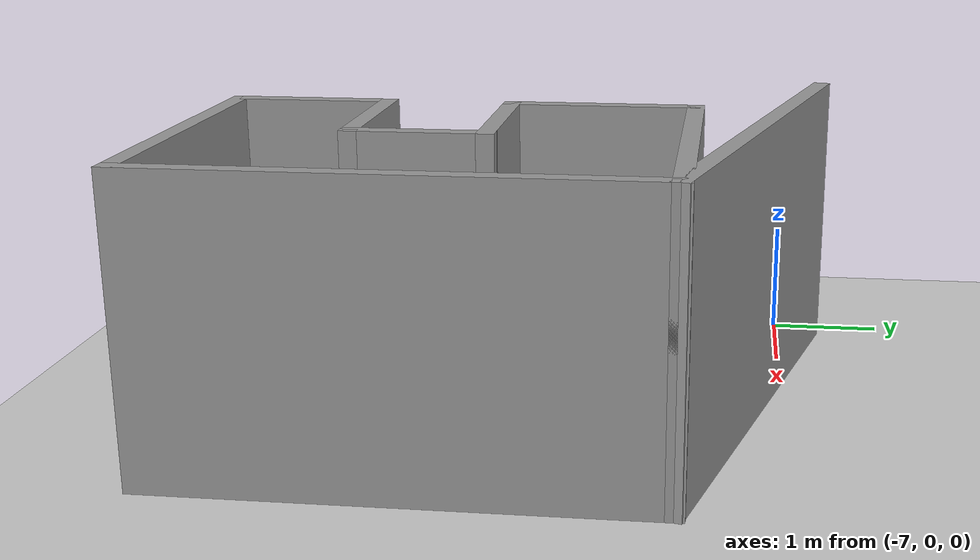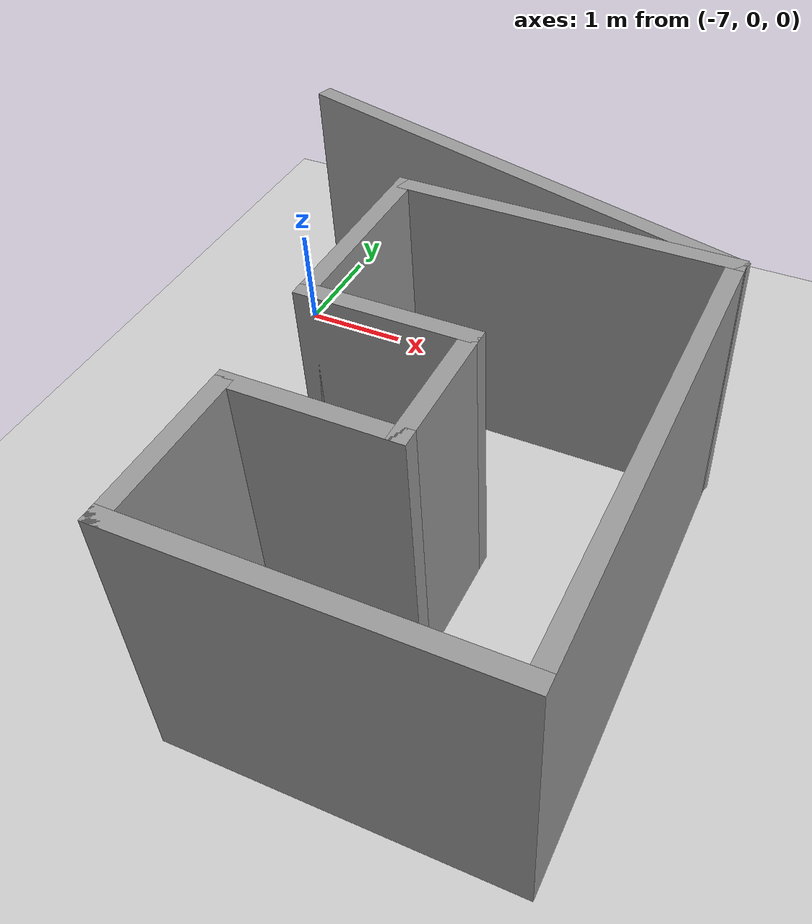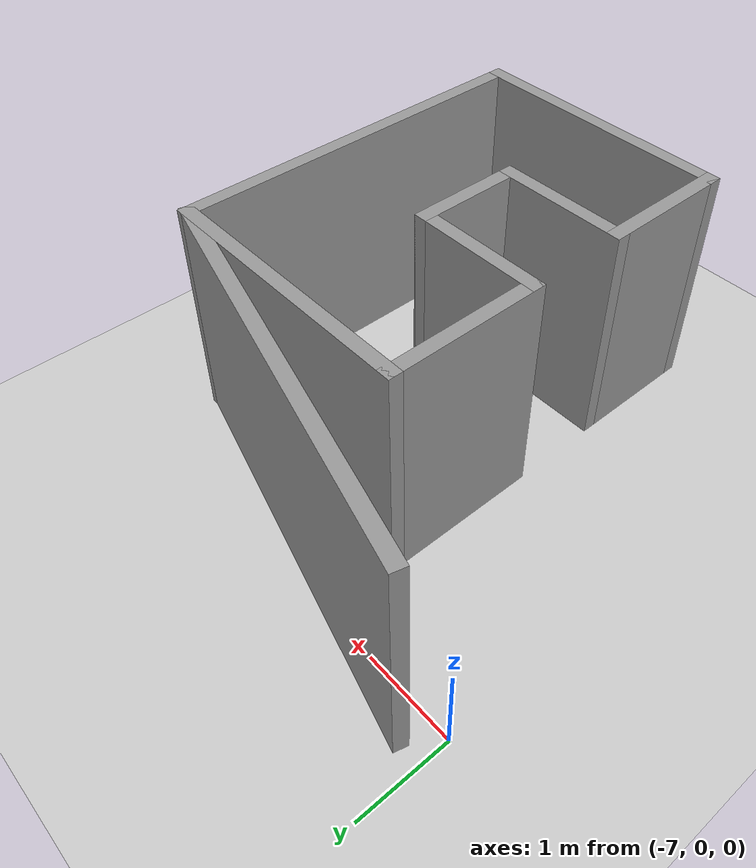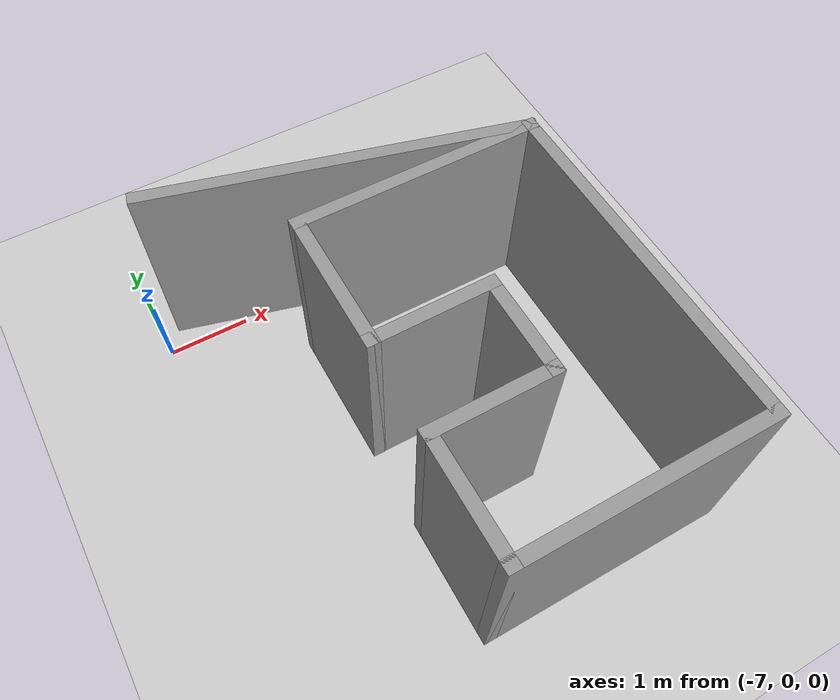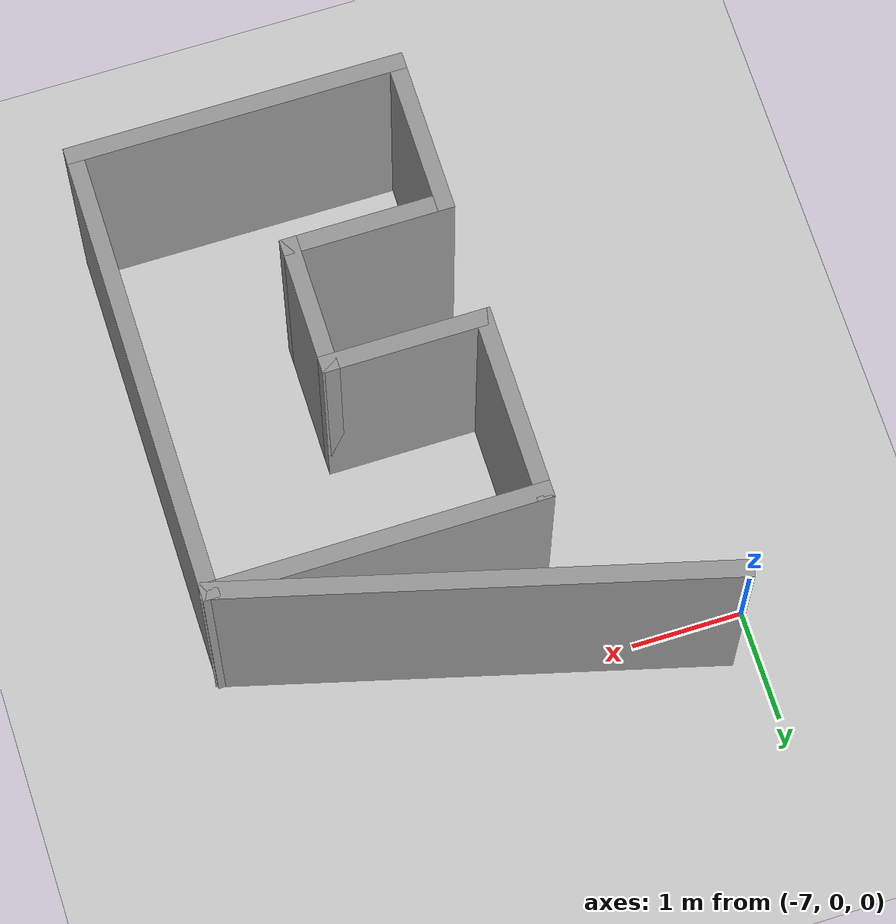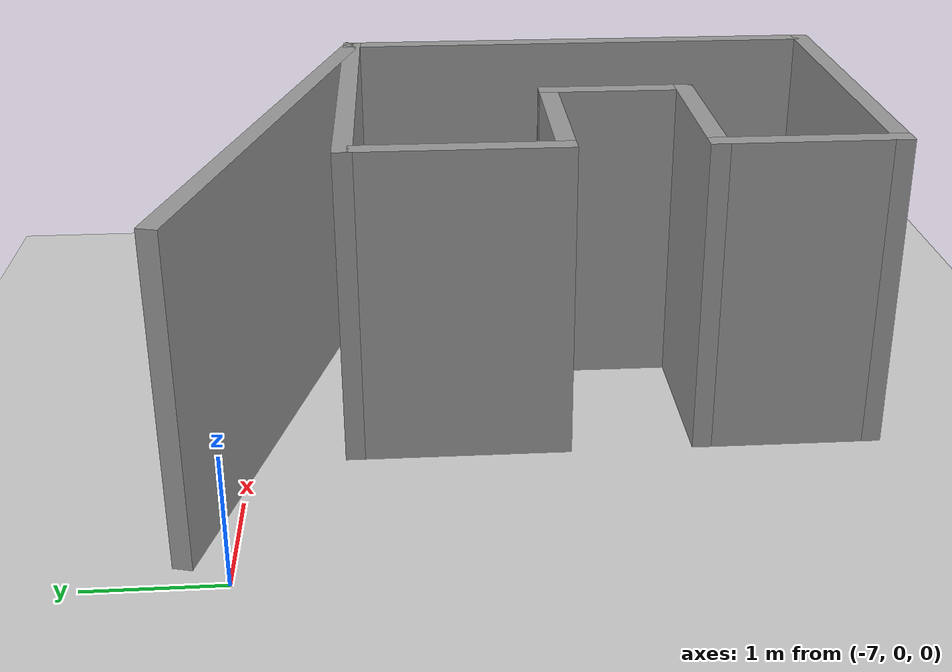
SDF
<sdf version="1.7">
 <world name="default">
  <light name="sun" type="directional">
   <pose>0 0 10 0 -0 0</pose>
   <diffuse>0.8 0.8 0.8 1</diffuse>
   <specular>0.2 0.2 0.2 1</specular>
   <attenuation>
    <range>1000</range>
    <constant>0.9</constant>
    <linear>0.01</linear>
    <quadratic>0.001</quadratic>
   </attenuation>
   <direction>-0.5 0.1 -0.9</direction>
   <spot><inner_angle>0</inner_angle><outer_angle>0</outer_angle><falloff>0</falloff></spot>
  </light>
  <model name="ground_plane">
   <static>1</static>
   <link name="link">
    <collision name="collision">
     <geometry><plane><normal>0 0 1</normal><size>100 100</size></plane></geometry>
     <surface>
      <contact><collide_bitmask>65535</collide_bitmask></contact>
      <friction><ode><mu>100</mu><mu2>50</mu2></ode></friction>
     </surface>
    </collision>
    <visual name="visual">
     <cast_shadows>0</cast_shadows>
     <geometry><plane><normal>0 0 1</normal><size>100 100</size></plane></geometry>
     <material>
      <script><uri>file://media/materials/scripts/gazebo.material</uri><name>Gazebo/Grey</name></script>
     </material>
    </visual>
   </link>
  </model>
  <gravity>0 0 -9.8</gravity>
  <magnetic_field>6e-06 2.3e-05 -4.2e-05</magnetic_field>
  <atmosphere type="adiabatic"/>
  <physics type="ode">
   <max_step_size>0.001</max_step_size>
   <real_time_factor>1</real_time_factor>
   <real_time_update_rate>1000</real_time_update_rate>
  </physics>
  <scene><ambient>0.4 0.4 0.4 1</ambient><background>0.7 0.7 0.7 1</background><shadows>1</shadows></scene>
  <spherical_coordinates>
   <surface_model>EARTH_WGS84</surface_model>
   <latitude_deg>0</latitude_deg>
   <longitude_deg>0</longitude_deg>
   <elevation>0</elevation>
   <heading_deg>0</heading_deg>
  </spherical_coordinates>
  <model name="demo">
   <pose>-3.40682 -2.25364 0 0 -0 0</pose>
   <link name="Wall_0">
    <collision name="Wall_0_Collision">
     <geometry><box><size>3 0.15 2.5</size></box></geometry>
     <pose>0 0 1.25 0 -0 0</pose>
    </collision>
    <visual name="Wall_0_Visual">
     <pose>0 0 1.25 0 -0 0</pose>
     <geometry><box><size>3 0.15 2.5</size></box></geometry>
     <material>
      <script><uri>file://media/materials/scripts/gazebo.material</uri><name>Gazebo/Grey</name></script>
      <ambient>1 1 1 1</ambient>
     </material>
     <meta><layer>0</layer></meta>
    </visual>
    <pose>-0.538183 1.45364 0 0 -0 3.14159</pose>
   </link>
   <link name="Wall_1">
    <collision name="Wall_1_Collision">
     <geometry><box><size>1.75 0.15 2.5</size></box></geometry>
     <pose>0 0 1.25 0 -0 0</pose>
    </collision>
    <visual name="Wall_1_Visual">
     <pose>0 0 1.25 0 -0 0</pose>
     <geometry><box><size>1.75 0.15 2.5</size></box></geometry>
     <material>
      <script><uri>file://media/materials/scripts/gazebo.material</uri><name>Gazebo/Grey</name></script>
      <ambient>1 1 1 1</ambient>
     </material>
     <meta><layer>0</layer></meta>
    </visual>
    <pose>-1.96318 0.653641 0 0 -0 -1.5708</pose>
   </link>
   <link name="Wall_2">
    <collision name="Wall_2_Collision">
     <geometry><box><size>1.5 0.15 2.5</size></box></geometry>
     <pose>0 0 1.25 0 -0 0</pose>
    </collision>
    <visual name="Wall_2_Visual">
     <pose>0 0 1.25 0 -0 0</pose>
     <geometry><box><size>1.5 0.15 2.5</size></box></geometry>
     <material>
      <script><uri>file://media/materials/scripts/gazebo.material</uri><name>Gazebo/Grey</name></script>
      <ambient>1 1 1 1</ambient>
     </material>
     <meta><layer>0</layer></meta>
    </visual>
    <pose>-1.28818 -0.146359 0 0 -0 0</pose>
   </link>
   <link name="Wall_3">
    <collision name="Wall_3_Collision">
     <geometry><box><size>1.25 0.15 2.5</size></box></geometry>
     <pose>0 0 1.25 0 -0 0</pose>
    </collision>
    <visual name="Wall_3_Visual">
     <pose>0 0 1.25 0 -0 0</pose>
     <geometry><box><size>1.25 0.15 2.5</size></box></geometry>
     <material>
      <script><uri>file://media/materials/scripts/gazebo.material</uri><name>Gazebo/Grey</name></script>
      <ambient>1 1 1 1</ambient>
     </material>
     <meta><layer>0</layer></meta>
    </visual>
    <pose>-0.613183 -0.696359 0 0 -0 -1.5708</pose>
   </link>
   <link name="Wall_4">
    <collision name="Wall_4_Collision">
     <geometry><box><size>1.5 0.15 2.5</size></box></geometry>
     <pose>0 0 1.25 0 -0 0</pose>
    </collision>
    <visual name="Wall_4_Visual">
     <pose>0 0 1.25 0 -0 0</pose>
     <geometry><box><size>1.5 0.15 2.5</size></box></geometry>
     <material>
      <script><uri>file://media/materials/scripts/gazebo.material</uri><name>Gazebo/Grey</name></script>
      <ambient>1 1 1 1</ambient>
     </material>
     <meta><layer>0</layer></meta>
    </visual>
    <pose>-1.28818 -1.24636 0 0 -0 3.14159</pose>
   </link>
   <link name="Wall_5">
    <collision name="Wall_5_Collision">
     <geometry><box><size>1.5 0.15 2.5</size></box></geometry>
     <pose>0 0 1.25 0 -0 0</pose>
    </collision>
    <visual name="Wall_5_Visual">
     <pose>0 0 1.25 0 -0 0</pose>
     <geometry><box><size>1.5 0.15 2.5</size></box></geometry>
     <material>
      <script><uri>file://media/materials/scripts/gazebo.material</uri><name>Gazebo/Grey</name></script>
      <ambient>1 1 1 1</ambient>
     </material>
     <meta><layer>0</layer></meta>
    </visual>
    <pose>-1.96318 -1.92136 0 0 -0 -1.5708</pose>
   </link>
   <link name="Wall_6">
    <collision name="Wall_6_Collision">
     <geometry><box><size>3 0.15 2.5</size></box></geometry>
     <pose>0 0 1.25 0 -0 0</pose>
    </collision>
    <visual name="Wall_6_Visual">
     <pose>0 0 1.25 0 -0 0</pose>
     <geometry><box><size>3 0.15 2.5</size></box></geometry>
     <material>
      <script><uri>file://media/materials/scripts/gazebo.material</uri><name>Gazebo/Grey</name></script>
      <ambient>1 1 1 1</ambient>
     </material>
     <meta><layer>0</layer></meta>
    </visual>
    <pose>-0.538183 -2.59636 0 0 -0 0</pose>
   </link>
   <link name="Wall_7">
    <collision name="Wall_7_Collision">
     <geometry><box><size>4.2 0.15 2.5</size></box></geometry>
     <pose>0 0 1.25 0 -0 0</pose>
    </collision>
    <visual name="Wall_7_Visual">
     <pose>0 0 1.25 0 -0 0</pose>
     <geometry><box><size>4.2 0.15 2.5</size></box></geometry>
     <material>
      <script><uri>file://media/materials/scripts/gazebo.material</uri><name>Gazebo/Grey</name></script>
      <ambient>1 1 1 1</ambient>
     </material>
     <meta><layer>0</layer></meta>
    </visual>
    <pose>0.886817 -0.571359 0 0 -0 1.5708</pose>
   </link>
   <link name="Wall_8">
    <collision name="Wall_8_Collision">
     <geometry><box><size>0.15 0.15 2.5</size></box></geometry>
     <pose>0 0 1.25 0 -0 0</pose>
    </collision>
    <visual name="Wall_8_Visual">
     <pose>0 0 1.25 0 -0 0</pose>
     <geometry><box><size>0.15 0.15 2.5</size></box></geometry>
     <material>
      <script><uri>file://media/materials/scripts/gazebo.material</uri><name>Gazebo/Grey</name></script>
      <ambient>1 1 1 1</ambient>
     </material>
     <meta><layer>0</layer></meta>
    </visual>
    <pose>0.886817 1.45364 0 0 -0 0</pose>
   </link>
   <link name="Wall_9">
    <collision name="Wall_9_Collision">
     <geometry><box><size>4.5 0.15 2.5</size></box></geometry>
     <pose>0 0 1.25 0 -0 0</pose>
    </collision>
    <visual name="Wall_9_Visual">
     <pose>0 0 1.25 0 -0 0</pose>
     <geometry><box><size>4.5 0.15 2.5</size></box></geometry>
     <material>
      <script><uri>file://media/materials/scripts/gazebo.material</uri><name>Gazebo/Grey</name></script>
      <ambient>0 0 0 1</ambient>
     </material>
     <meta><layer>0</layer></meta>
    </visual>
    <pose>-1.21407 2.01657 0 0 -0 2.87979</pose>
   </link>
   <static>1</static>
  </model>
 </world>
</sdf>
